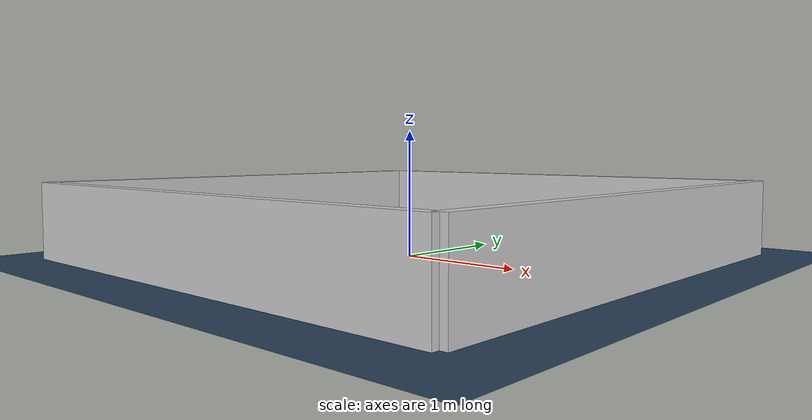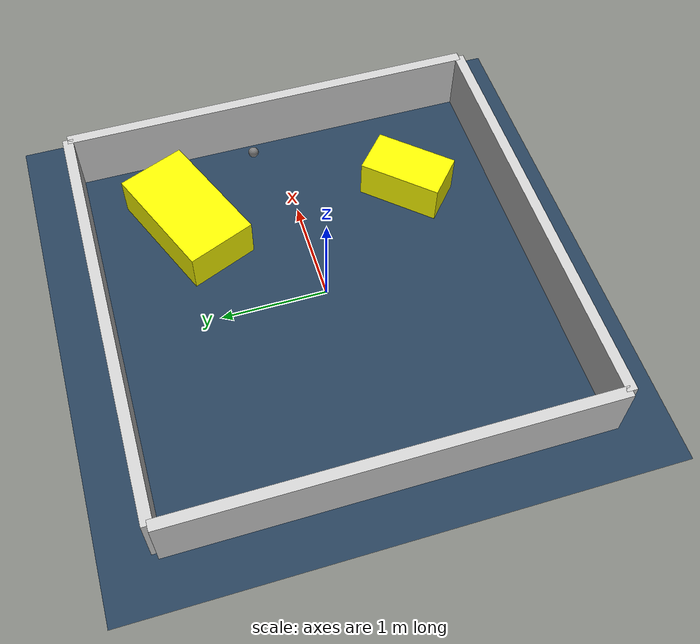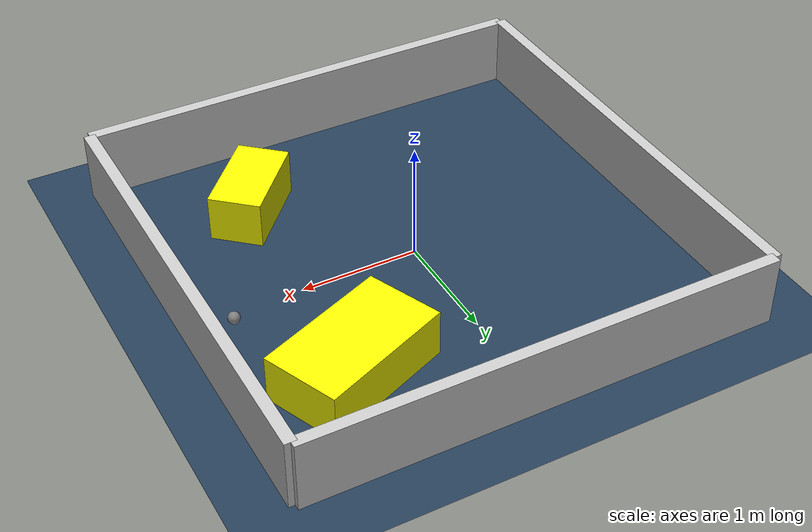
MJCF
<?xml version="1.0" ?>
<mujoco model="generated_environment">
  <option timestep="0.01" integrator="RK4" cone="elliptic"/>
  <default>
    <geom density="1"/>
  </default>
  <asset>
    <texture builtin="gradient" height="3072" rgb1="0.3 0.5 0.7" rgb2="0 0 0" type="skybox" width="512"/>
    <texture builtin="checker" height="300" mark="edge" markrgb="0.8 0.8 0.8" name="groundplane" rgb1="0.2 0.3 0.4" rgb2="0.1 0.2 0.3" type="2d" width="300"/>
    <material name="groundplane" reflectance="0.2" texrepeat="5 5" texture="groundplane" texuniform="true"/>
    <material name="robot" rgba="0.0 1.0 0.0 1"/>
  </asset>
  <worldbody>
    <light dir="0 0 -1" directional="true" pos="0 0 1.5"/>
    <geom condim="4" friction="1.0 0.005 0.001" material="groundplane" name="floor" size="0 0 0.05" type="plane"/>
    <body name="walls">
      <geom name="wall_1" condim="4" pos="-2.0 0.0 0.3" rgba="0.800000011920929 0.800000011920929 0.800000011920929 1.0" size="0.05 2.0 0.3" type="box"/>
      <geom name="wall_2" condim="4" pos="2.0 0.0 0.3" rgba="0.800000011920929 0.800000011920929 0.800000011920929 1.0" size="0.05 2.0 0.3" type="box"/>
      <geom name="wall_3" condim="4" pos="0.0 -2.0 0.3" rgba="0.800000011920929 0.800000011920929 0.800000011920929 1.0" size="2.0 0.05 0.3" type="box"/>
      <geom name="wall_4" condim="4" pos="0.0 2.0 0.3" rgba="0.800000011920929 0.800000011920929 0.800000011920929 1.0" size="2.0 0.05 0.3" type="box"/>
    </body>
    <body name="robot">
      <joint name="joint_x" type="slide" pos="0 0 0" axis="1 0 0"/>
      <joint name="joint_y" type="slide" pos="0 0 0" axis="0 1 0"/>
      <geom name="robot" type="sphere" pos="1.689019560821809 0.26204854990600124 0.2" size="0.05" mass="5." friction="1.0 0.005 0.0001" condim="4"/>
      <site name="sensor_ball"/>
    </body>
    <body name="obstacle_1_movable">
      <geom name="obstacle_1_movable" condim="4" pos="0.9554052399944917 -1.1103657452649558 0.2" euler="0 0 228.14906119241272" friction="1.0 0.005 0.001" rgba="1 1 0 1" size="0.3954661349178271 0.2237912550561749 0.2" type="box" mass="0.1"/>
      <joint type="free"/>
    </body>
    <body name="obstacle_2_movable">
      <geom name="obstacle_2_movable" condim="4" pos="1.0808112834433445 1.0664039953687314 0.2" euler="0 0 292.54405237220874" friction="1.0 0.005 0.001" rgba="1 1 0 1" size="0.335093586589598 0.5899633326676932 0.2" type="box" mass="0.1"/>
      <joint type="free"/>
    </body>
  </worldbody>
  <actuator>
    <motor name="actuator_x" joint="joint_x" gear="1" ctrlrange="-1 1"/>
    <motor name="actuator_y" joint="joint_y" gear="1" ctrlrange="-1 1"/>
  </actuator>
</mujoco>
